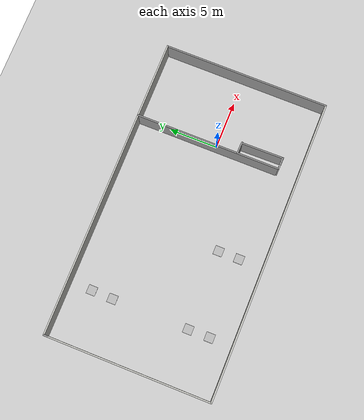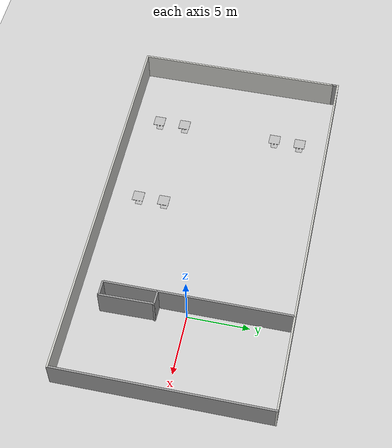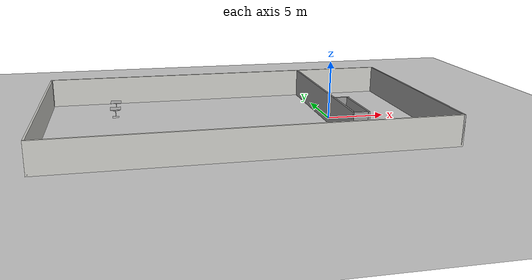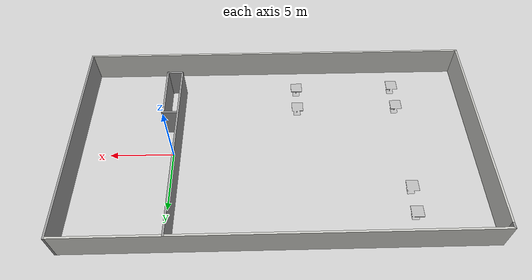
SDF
<sdf version="1.7">
 <world name="default">
  <light name="sun" type="directional">
   <pose>0 0 10 0 -0 0</pose>
   <diffuse>0.8 0.8 0.8 1</diffuse>
   <specular>0.2 0.2 0.2 1</specular>
   <attenuation>
    <range>1000</range>
    <constant>0.9</constant>
    <linear>0.01</linear>
    <quadratic>0.001</quadratic>
   </attenuation>
   <direction>-0.5 0.1 -0.9</direction>
   <spot><inner_angle>0</inner_angle><outer_angle>0</outer_angle><falloff>0</falloff></spot>
  </light>
  <model name="ground_plane">
   <static>1</static>
   <link name="link">
    <collision name="collision">
     <geometry><plane><normal>0 0 1</normal><size>100 100</size></plane></geometry>
     <surface><friction><ode><mu>100</mu><mu2>50</mu2></ode></friction></surface>
    </collision>
    <visual name="visual">
     <cast_shadows>0</cast_shadows>
     <geometry><plane><normal>0 0 1</normal><size>100 100</size></plane></geometry>
     <material>
      <script><uri>file://media/materials/scripts/gazebo.material</uri><name>Gazebo/Grey</name></script>
     </material>
    </visual>
   </link>
  </model>
  <gravity>0 0 -9.8</gravity>
  <magnetic_field>6e-06 2.3e-05 -4.2e-05</magnetic_field>
  <atmosphere type="adiabatic"/>
  <physics type="ode">
   <max_step_size>0.001</max_step_size>
   <real_time_factor>1</real_time_factor>
   <real_time_update_rate>1000</real_time_update_rate>
  </physics>
  <scene><ambient>0.4 0.4 0.4 1</ambient><background>0.7 0.7 0.7 1</background><shadows>1</shadows></scene>
  <audio><device>default</device></audio>
  <spherical_coordinates>
   <surface_model>EARTH_WGS84</surface_model>
   <latitude_deg>0</latitude_deg>
   <longitude_deg>0</longitude_deg>
   <elevation>0</elevation>
   <heading_deg>0</heading_deg>
  </spherical_coordinates>
  <model name="wall1">
   <pose>-8.267 -0.255489 0 0 -0 0</pose>
   <link name="Wall_5">
    <collision name="Wall_5_Collision">
     <geometry><box><size>16.75 0.15 2.5</size></box></geometry>
     <pose>0 0 1.25 0 -0 0</pose>
    </collision>
    <visual name="Wall_5_Visual">
     <pose>0 0 1.25 0 -0 0</pose>
     <geometry><box><size>16.75 0.15 2.5</size></box></geometry>
     <material>
      <script><uri>file://media/materials/scripts/gazebo.material</uri><name>Gazebo/CeilingTiled</name></script>
      <ambient>1 1 1 1</ambient>
     </material>
     <meta><layer>0</layer></meta>
    </visual>
    <pose>-15.675 -0.25 0 0 -0 -1.5708</pose>
   </link>
   <link name="Wall_6">
    <collision name="Wall_6_Collision">
     <geometry><box><size>31.5 0.15 2.5</size></box></geometry>
     <pose>0 0 1.25 0 -0 0</pose>
    </collision>
    <visual name="Wall_6_Visual">
     <pose>0 0 1.25 0 -0 0</pose>
     <geometry><box><size>31.5 0.15 2.5</size></box></geometry>
     <material>
      <script><uri>file://media/materials/scripts/gazebo.material</uri><name>Gazebo/CeilingTiled</name></script>
      <ambient>1 1 1 1</ambient>
     </material>
     <meta><layer>0</layer></meta>
    </visual>
    <pose>-0 -8.55 0 0 -0 0</pose>
   </link>
   <link name="Wall_7">
    <collision name="Wall_7_Collision">
     <geometry><box><size>17.25 0.15 2.5</size></box></geometry>
     <pose>0 0 1.25 0 -0 0</pose>
    </collision>
    <visual name="Wall_7_Visual">
     <pose>0 0 1.25 0 -0 0</pose>
     <geometry><box><size>17.25 0.15 2.5</size></box></geometry>
     <material>
      <script><uri>file://media/materials/scripts/gazebo.material</uri><name>Gazebo/Grey</name></script>
      <ambient>1 1 1 1</ambient>
     </material>
     <meta><layer>0</layer></meta>
    </visual>
    <pose>15.675 0 0 0 -0 1.5708</pose>
   </link>
   <link name="Wall_8">
    <collision name="Wall_8_Collision">
     <geometry><box><size>31.5 0.15 2.5</size></box></geometry>
     <pose>0 0 1.25 0 -0 0</pose>
    </collision>
    <visual name="Wall_8_Visual">
     <pose>0 0 1.25 0 -0 0</pose>
     <geometry><box><size>31.5 0.15 2.5</size></box></geometry>
     <material>
      <script><uri>file://media/materials/scripts/gazebo.material</uri><name>Gazebo/CeilingTiled</name></script>
      <ambient>1 1 1 1</ambient>
     </material>
     <meta><layer>0</layer></meta>
    </visual>
    <pose>-0 8.55 0 0 -0 3.14159</pose>
   </link>
   <link name="Wall_9">
    <collision name="Wall_9_Collision">
     <geometry><box><size>0.65 0.15 2.5</size></box></geometry>
     <pose>0 0 1.25 0 -0 0</pose>
    </collision>
    <visual name="Wall_9_Visual">
     <pose>0 0 1.25 0 -0 0</pose>
     <geometry><box><size>0.65 0.15 2.5</size></box></geometry>
     <material>
      <script><uri>file://media/materials/scripts/gazebo.material</uri><name>Gazebo/Grey</name></script>
      <ambient>1 1 1 1</ambient>
     </material>
     <meta><layer>0</layer></meta>
    </visual>
    <pose>-15.675 8.3 0 0 -0 -1.5708</pose>
   </link>
   <static>1</static>
  </model>
  <model name="cafe_table">
   <static>1</static>
   <link name="link">
    <collision name="surface">
     <pose>0 0 0.755 0 -0 0</pose>
     <geometry><box><size>0.913 0.913 0.04</size></box></geometry>
    </collision>
    <collision name="column">
     <pose>0 0 0.37 0 -0 0</pose>
     <geometry><box><size>0.042 0.042 0.74</size></box></geometry>
    </collision>
    <collision name="base">
     <pose>0 0 0.02 0 -0 0</pose>
     <geometry><box><size>0.56 0.56 0.04</size></box></geometry>
    </collision>
    <visual name="visual">
     <geometry><mesh><uri>model://cafe_table/meshes/cafe_table.dae</uri></mesh></geometry>
    </visual>
   </link>
   <pose>-18.2486 3.76188 0 0 -0 0</pose>
  </model>
  <model name="cafe_table_0">
   <static>1</static>
   <link name="link">
    <collision name="surface">
     <pose>0 0 0.755 0 -0 0</pose>
     <geometry><box><size>0.913 0.913 0.04</size></box></geometry>
    </collision>
    <collision name="column">
     <pose>0 0 0.37 0 -0 0</pose>
     <geometry><box><size>0.042 0.042 0.74</size></box></geometry>
    </collision>
    <collision name="base">
     <pose>0 0 0.02 0 -0 0</pose>
     <geometry><box><size>0.56 0.56 0.04</size></box></geometry>
    </collision>
    <visual name="visual">
     <geometry><mesh><uri>model://cafe_table/meshes/cafe_table.dae</uri></mesh></geometry>
    </visual>
   </link>
   <pose>-18.2114 5.95071 0 0 -0 0</pose>
  </model>
  <model name="cafe_table_1">
   <static>1</static>
   <link name="link">
    <collision name="surface">
     <pose>0 0 0.755 0 -0 0</pose>
     <geometry><box><size>0.913 0.913 0.04</size></box></geometry>
    </collision>
    <collision name="column">
     <pose>0 0 0.37 0 -0 0</pose>
     <geometry><box><size>0.042 0.042 0.74</size></box></geometry>
    </collision>
    <collision name="base">
     <pose>0 0 0.02 0 -0 0</pose>
     <geometry><box><size>0.56 0.56 0.04</size></box></geometry>
    </collision>
    <visual name="visual">
     <geometry><mesh><uri>model://cafe_table/meshes/cafe_table.dae</uri></mesh></geometry>
    </visual>
   </link>
   <pose>-18.253 -4.21267 0 0 -0 0</pose>
  </model>
  <model name="cafe_table_2">
   <static>1</static>
   <link name="link">
    <collision name="surface">
     <pose>0 0 0.755 0 -0 0</pose>
     <geometry><box><size>0.913 0.913 0.04</size></box></geometry>
    </collision>
    <collision name="column">
     <pose>0 0 0.37 0 -0 0</pose>
     <geometry><box><size>0.042 0.042 0.74</size></box></geometry>
    </collision>
    <collision name="base">
     <pose>0 0 0.02 0 -0 0</pose>
     <geometry><box><size>0.56 0.56 0.04</size></box></geometry>
    </collision>
    <visual name="visual">
     <geometry><mesh><uri>model://cafe_table/meshes/cafe_table.dae</uri></mesh></geometry>
    </visual>
   </link>
   <pose>-18.2268 -6.42466 0 0 -0 0</pose>
  </model>
  <model name="cafe_table_3">
   <static>1</static>
   <link name="link">
    <collision name="surface">
     <pose>0 0 0.755 0 -0 0</pose>
     <geometry><box><size>0.913 0.913 0.04</size></box></geometry>
    </collision>
    <collision name="column">
     <pose>0 0 0.37 0 -0 0</pose>
     <geometry><box><size>0.042 0.042 0.74</size></box></geometry>
    </collision>
    <collision name="base">
     <pose>0 0 0.02 0 -0 0</pose>
     <geometry><box><size>0.56 0.56 0.04</size></box></geometry>
    </collision>
    <visual name="visual">
     <geometry><mesh><uri>model://cafe_table/meshes/cafe_table.dae</uri></mesh></geometry>
    </visual>
   </link>
   <pose>-10.011 -4.15146 0 0 -0 0</pose>
  </model>
  <model name="cafe_table_4">
   <static>1</static>
   <link name="link">
    <collision name="surface">
     <pose>0 0 0.755 0 -0 0</pose>
     <geometry><box><size>0.913 0.913 0.04</size></box></geometry>
    </collision>
    <collision name="column">
     <pose>0 0 0.37 0 -0 0</pose>
     <geometry><box><size>0.042 0.042 0.74</size></box></geometry>
    </collision>
    <collision name="base">
     <pose>0 0 0.02 0 -0 0</pose>
     <geometry><box><size>0.56 0.56 0.04</size></box></geometry>
    </collision>
    <visual name="visual">
     <geometry><mesh><uri>model://cafe_table/meshes/cafe_table.dae</uri></mesh></geometry>
    </visual>
   </link>
   <pose>-10.0097 -6.31134 0 0 -0 0</pose>
  </model>
  <model name="wallx">
   <pose>0.143104 0.77808 0 0 -0 0</pose>
   <link name="Wall_0">
    <collision name="Wall_0_Collision">
     <geometry><box><size>15 0.15 2.5</size></box></geometry>
     <pose>0 0 1.25 0 -0 0</pose>
    </collision>
    <visual name="Wall_0_Visual">
     <pose>0 0 1.25 0 -0 0</pose>
     <geometry><box><size>15 0.15 2.5</size></box></geometry>
     <material>
      <script><uri>file://media/materials/scripts/gazebo.material</uri><name>Gazebo/Grey</name></script>
      <ambient>1 1 1 1</ambient>
     </material>
     <meta><layer>0</layer></meta>
    </visual>
    <pose>-0.598013 0.077399 0 0 -0 1.5708</pose>
   </link>
   <link name="Wall_2">
    <collision name="Wall_2_Collision">
     <geometry><box><size>1.25 0.15 2.5</size></box></geometry>
     <pose>0 0 1.25 0 -0 0</pose>
    </collision>
    <visual name="Wall_2_Visual">
     <pose>0 0 1.25 0 -0 0</pose>
     <geometry><box><size>1.25 0.15 2.5</size></box></geometry>
     <material>
      <script><uri>file://media/materials/scripts/gazebo.material</uri><name>Gazebo/Grey</name></script>
      <ambient>1 1 1 1</ambient>
     </material>
     <meta><layer>0</layer></meta>
    </visual>
    <pose>0.01277 -7.46788 0 0 -0 3.14159</pose>
   </link>
   <link name="Wall_4">
    <collision name="Wall_4_Collision">
     <geometry><box><size>4.5 0.15 2.5</size></box></geometry>
     <pose>0 0 1.25 0 -0 0</pose>
    </collision>
    <visual name="Wall_4_Visual">
     <pose>0 0 1.25 0 -0 0</pose>
     <geometry><box><size>4.5 0.15 2.5</size></box></geometry>
     <material>
      <script><uri>file://media/materials/scripts/gazebo.material</uri><name>Gazebo/Grey</name></script>
      <ambient>1 1 1 1</ambient>
     </material>
     <meta><layer>0</layer></meta>
    </visual>
    <pose>0.565698 -5.32657 0 0 -0 -1.55681</pose>
   </link>
   <link name="Wall_6">
    <collision name="Wall_6_Collision">
     <geometry><box><size>1.33667 0.15 2.5</size></box></geometry>
     <pose>0 0 1.25 0 -0 0</pose>
    </collision>
    <visual name="Wall_6_Visual">
     <pose>0 0 1.25 0 -0 0</pose>
     <geometry><box><size>1.33667 0.15 2.5</size></box></geometry>
     <material>
      <script><uri>file://media/materials/scripts/gazebo.material</uri><name>Gazebo/Grey</name></script>
      <ambient>1 1 1 1</ambient>
     </material>
     <meta><layer>0</layer></meta>
    </visual>
    <pose>0.002975 -3.13636 0 0 -0 -0.025635</pose>
   </link>
   <static>1</static>
  </model>
 </world>
</sdf>
